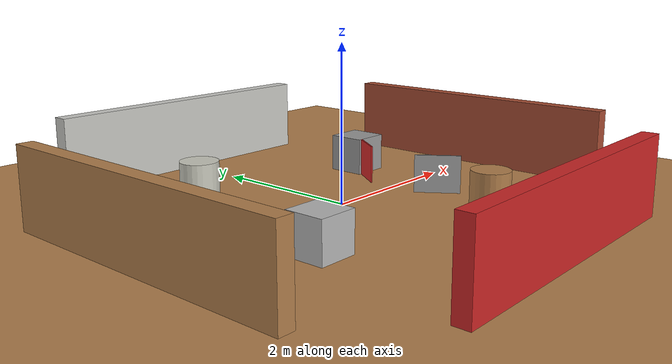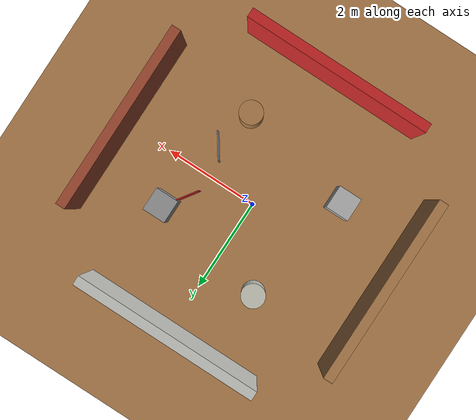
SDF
<?xml version="1.0"?>
<sdf version="1.6">
  <world name="default">

<!-- Tentativa de simular o caminho real do MASC até a FT (Incompleto) -->

    <physics type="ode">
      <max_step_size>0.01</max_step_size>
      <real_time_factor>1.0</real_time_factor>
      <real_time_update_rate>100</real_time_update_rate>
      <ode>
        <solver>
          <type>quick</type>
          <iters>200</iters>
          <sor>1.0</sor>
        </solver>
        <constraints>
          <cfm>0.0001</cfm>
          <erp>0.2</erp>
          <contact_max_correcting_vel>100</contact_max_correcting_vel>
          <contact_surface_layer>0.001</contact_surface_layer>
        </constraints>
      </ode>
    </physics>

    <!-- Plugins padrão do Gazebo Classic (geralmente já vêm no empty_world) -->
    <plugin name="gazebo_ros_state" filename="libgazebo_ros_state.so"/>

    <!-- Luz de Ambiente para a cena -->
    <scene>
      <ambient>0.4 0.4 0.4 1</ambient>
      <background>0.7 0.7 0.7 1</background>
      <shadows>true</shadows>
    </scene>

    <!-- Definição do Sol na simulação -->
    <light name="sun" type="directional">
      <cast_shadows>true</cast_shadows>
      <pose>0 0 10 0 0 0</pose>
      <diffuse>0.8 0.8 0.8 1</diffuse>
      <specular>0.2 0.2 0.2 1</specular>
      <direction>-0.5 0.1 -0.9</direction>
    </light>

    <!-- Chão -->
    <model name="ground_plane">
      <static>true</static>
      <link name="link">
        <collision name="collision">
          <geometry>
            <plane>
              <normal>0 0 1</normal>
              <size>100 100</size>
            </plane>
          </geometry>
        </collision>
        <visual name="visual">
          <geometry>
            <plane>
              <normal>0 0 1</normal>
              <size>100 100</size>
            </plane>
          </geometry>
          <material>
            <script>
              <uri>file://media/materials/scripts/gazebo.material</uri>
              <name>Gazebo/WoodFloor</name>
            </script>
          </material>
        </visual>
      </link>
    </model>

    <!-- Cadeiras dentro do MASC -->
    <model name="chairs1">
      <static>true</static>
      <pose>3 0 0.5 0 0 0</pose>
      <link name="link">
        <collision name="collision">
          <geometry><box><size>0.2 4 1</size></box></geometry>
        </collision>
        <visual name="visual">
          <geometry><box><size>0.2 4 1</size></box></geometry>
          <material>
            <script>
              <uri>file://media/materials/scripts/gazebo.material</uri>
              <name>Gazebo/Bricks</name>
            </script>
          </material>
        </visual>
      </link>
    </model>

    <model name="chairs2">
      <static>true</static>
      <pose>3 0 0.5 0 0 0</pose>
      <link name="link">
        <collision name="collision">
          <geometry><box><size>0.2 4 1</size></box></geometry>
        </collision>
        <visual name="visual">
          <geometry><box><size>0.2 4 1</size></box></geometry>
          <material>
            <script>
              <uri>file://media/materials/scripts/gazebo.material</uri>
              <name>Gazebo/Bricks</name>
            </script>
          </material>
        </visual>
      </link>
    </model>

    <!-- Cadeiras dentro do MASC -->
    <model name="chairs3">
      <static>true</static>
      <pose>3 0 0.5 0 0 0</pose>
      <link name="link">
        <collision name="collision">
          <geometry><box><size>0.2 4 1</size></box></geometry>
        </collision>
        <visual name="visual">
          <geometry><box><size>0.2 4 1</size></box></geometry>
          <material>
            <script>
              <uri>file://media/materials/scripts/gazebo.material</uri>
              <name>Gazebo/Bricks</name>
            </script>
          </material>
        </visual>
      </link>
    </model>

    <!-- Cadeiras dentro do MASC -->
    <model name="chairs4">
      <static>true</static>
      <pose>3 0 0.5 0 0 0</pose>
      <link name="link">
        <collision name="collision">
          <geometry><box><size>0.2 4 1</size></box></geometry>
        </collision>
        <visual name="visual">
          <geometry><box><size>0.2 4 1</size></box></geometry>
          <material>
            <script>
              <uri>file://media/materials/scripts/gazebo.material</uri>
              <name>Gazebo/Bricks</name>
            </script>
          </material>
        </visual>
      </link>
    </model>

    <!-- Pilares -->
    <model name="pillar1">
      <static>true</static>
      <pose>-3 0 0.5 0 0 0</pose>
      <link name="link">
        <collision name="collision">
          <geometry><box><size>0.2 4 1</size></box></geometry>
        </collision>
        <visual name="visual">
          <geometry><box><size>0.2 4 1</size></box></geometry>
          <material><script><uri>file://media/materials/scripts/gazebo.material</uri><name>Gazebo/Wood</name></script></material>
        </visual>
      </link>
    </model>

    <!-- Buraco -->
    <model name="green_hole1">
      <static>true</static>
      <pose>0 3 0.5 0 0 0</pose>
      <link name="link">
        <collision name="collision">
          <geometry><box><size>4 0.2 1</size></box></geometry>
        </collision>
        <visual name="visual">
          <geometry><box><size>4 0.2 1</size></box></geometry>
          <material><script><uri>file://media/materials/scripts/gazebo.material</uri><name>Gazebo/CeilingTiled</name></script></material>
        </visual>
      </link>
    </model>

    <!-- Wall West -->
    <model name="wall_west">
      <static>true</static>
      <pose>0 -3 0.5 0 0 0</pose>
      <link name="link">
        <collision name="collision">
          <geometry><box><size>4 0.2 1</size></box></geometry>
        </collision>
        <visual name="visual">
          <geometry><box><size>4 0.2 1</size></box></geometry>
          <material><script><uri>file://media/materials/scripts/gazebo.material</uri><name>Gazebo/Chequered</name></script></material>
        </visual>
      </link>
    </model>

    <!-- Box obstacle 1 -->
    <model name="box_1">
      <static>true</static>
      <pose>1.5 1 0.25 0 0 0</pose>
      <link name="link">
        <collision name="collision">
          <geometry><box><size>0.5 0.5 0.5</size></box></geometry>
        </collision>
        <visual name="visual">
          <geometry><box><size>0.5 0.5 0.5</size></box></geometry>
          <material><script><uri>file://media/materials/scripts/gazebo.material</uri><name>Gazebo/GrayGrid</name></script></material>
        </visual>
      </link>
    </model>

    <!-- Box obstacle 2 -->
    <model name="box_2">
      <static>true</static>
      <pose>-1.5 -1 0.25 0 0 0</pose>
      <link name="link">
        <collision name="collision">
          <geometry><box><size>0.5 0.5 0.5</size></box></geometry>
        </collision>
        <visual name="visual">
          <geometry><box><size>0.5 0.5 0.5</size></box></geometry>
          <material><script><uri>file://media/materials/scripts/gazebo.material</uri><name>Gazebo/RustySteel</name></script></material>
        </visual>
      </link>
    </model>

    <!-- Cylinder obstacle 1 -->
    <model name="cylinder_1">
      <static>true</static>
      <pose>1 -1.5 0.25 0 0 0</pose>
      <link name="link">
        <collision name="collision">
          <geometry><cylinder><radius>0.25</radius><length>0.5</length></cylinder></geometry>
        </collision>
        <visual name="visual">
          <geometry><cylinder><radius>0.25</radius><length>0.5</length></cylinder></geometry>
          <material><script><uri>file://media/materials/scripts/gazebo.material</uri><name>Gazebo/WoodPallet</name></script></material>
        </visual>
      </link>
    </model>

    <!-- Cylinder obstacle 2 -->
    <model name="cylinder_2">
      <static>true</static>
      <pose>-1 1.5 0.25 0 0 0</pose>
      <link name="link">
        <collision name="collision">
          <geometry><cylinder><radius>0.25</radius><length>0.5</length></cylinder></geometry>
        </collision>
        <visual name="visual">
          <geometry><cylinder><radius>0.25</radius><length>0.5</length></cylinder></geometry>
          <material><script><uri>file://media/materials/scripts/gazebo.material</uri><name>Gazebo/PaintedWall</name></script></material>
        </visual>
      </link>
    </model>

    <model name="feature_panel_1">
      <static>true</static>
      <pose>1.2 0.6 0.25 0 0 -0.6</pose>
      <link name="link">
        <collision name="collision">
          <geometry><box><size>0.02 0.6 0.5</size></box></geometry>
        </collision>
        <visual name="visual">
          <geometry><box><size>0.02 0.6 0.5</size></box></geometry>
          <material><script><uri>file://media/materials/scripts/gazebo.material</uri><name>Gazebo/Chequered</name></script></material>
        </visual>
      </link>
    </model>

    <model name="feature_panel_2">
      <static>true</static>
      <pose>1.2 -0.6 0.25 0 0 0.6</pose>
      <link name="link">
        <collision name="collision">
          <geometry><box><size>0.02 0.6 0.5</size></box></geometry>
        </collision>
        <visual name="visual">
          <geometry><box><size>0.02 0.6 0.5</size></box></geometry>
          <material><script><uri>file://media/materials/scripts/gazebo.material</uri><name>Gazebo/GrayGrid</name></script></material>
        </visual>
      </link>
    </model>

  </world>
</sdf>
